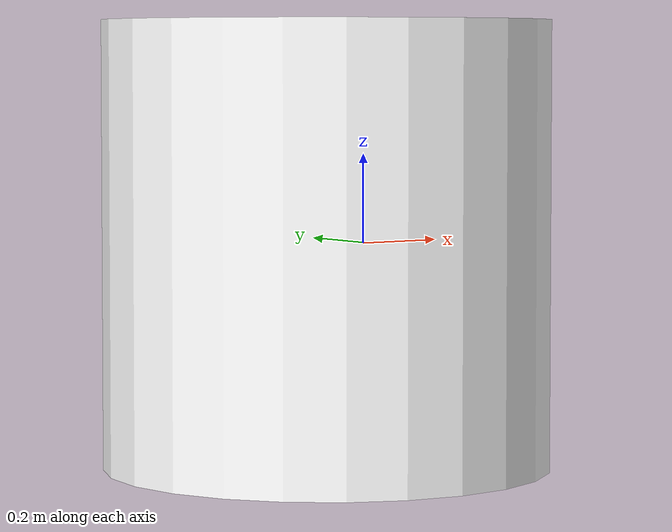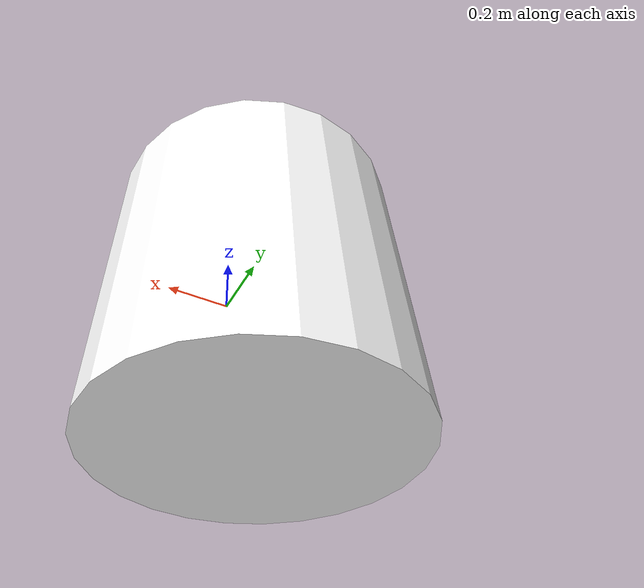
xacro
<?xml version="1.0"?>
<robot xmlns:xacro="http://www.ros.org/wiki/xacro" name="robot" >

    <xacro:include filename="inertial_macros.xacro"/>
    <xacro:arg name="sim_mode" default="true"/>
    <material name="white">
        <color rgba="1 1 1 1" />
    </material>

    <material name="orange">
        <color rgba="1 0.3 0.1 1"/>
    </material>

    <material name="blue">
        <color rgba="0.2 0.2 1 1"/>
    </material>

    <material name="black">
        <color rgba="0 0 0 1"/>
    </material>
   <!-- BASE LINK -->

    <link name="base_link">

    </link>

    <!-- CHASSIS LINK -->

    <joint name="chassis_joint" type="fixed">
        <parent link="base_link"/>
        <child link="chassis"/>
        <origin xyz="-0.1 0 0"/>
    </joint>

    <link name="chassis">
        <visual>
            <origin xyz="0.0 0.0 0.0"/>
            <geometry>
                <cylinder radius="0.5" length="1.0"/>
            </geometry>
            <material name="white"/>
        </visual>
        <collision>
            <origin xyz="0 0 0"/>
            <geometry>
                <cylinder radius="0.5" length="1.0"/>
            </geometry>
        </collision>
        <xacro:inertial_cylinder mass="1.0" length="1.0" radius="0.5">
            <origin xyz="0 0 0" rpy="0 0 0"/>
        </xacro:inertial_cylinder>
    </link>
    <gazebo reference="chassis">
        <material>Gazebo/White</material>
    </gazebo>

    <!-- LEFT WHEEL LINK -->

    <joint name="left_wheel_joint" type="continuous">
        <parent link="base_link"/>
        <child link="left_wheel"/>
        <origin xyz="0 0 0" rpy="1.57075 0 0" />
        <axis xyz="0 0 1"/>
    </joint>

    <link name="left_wheel">
        <visual>
            <geometry>
                <cylinder radius="0.05" length="0.04"/>
            </geometry>
            <material name="blue"/>
        </visual>
        <collision>
            <geometry>
                <cylinder radius="0.05" length="0.04"/>
            </geometry>
        </collision>
        <xacro:inertial_cylinder mass="0.1" length="0.04" radius="0.05">
            <origin xyz="0 0 0" rpy="1.57075 0 0"/>
        </xacro:inertial_cylinder>
    </link>
    <gazebo reference="left_wheel">
        <material>Gazebo/White</material>
    </gazebo>

    <!-- RIGHT WHEEL LINK -->

    <joint name="right_wheel_joint" type="continuous">
        <parent link="base_link"/>
        <child link="right_wheel"/>
        <origin xyz="0 0 0." rpy="1.57075 0 0" />
        <axis xyz="0 0 -1"/>
    </joint>

    <link name="right_wheel">
        <visual>
            <geometry>
                <cylinder radius="0.05" length="0.04"/>
            </geometry>
            <material name="blue"/>
        </visual>
        <collision>
            <geometry>
                <cylinder radius="0.05" length="0.04"/>
            </geometry>
        </collision>
        <xacro:inertial_cylinder mass="0.1" length="0.04" radius="0.05">
            <origin xyz="0 0 0" rpy="1.57075 0 0"/>
        </xacro:inertial_cylinder>
    </link>
    <gazebo reference="right_wheel">
        <material>Gazebo/White</material>
    </gazebo>

    <xacro:include filename="gazebo_control.xacro" />

</robot>
